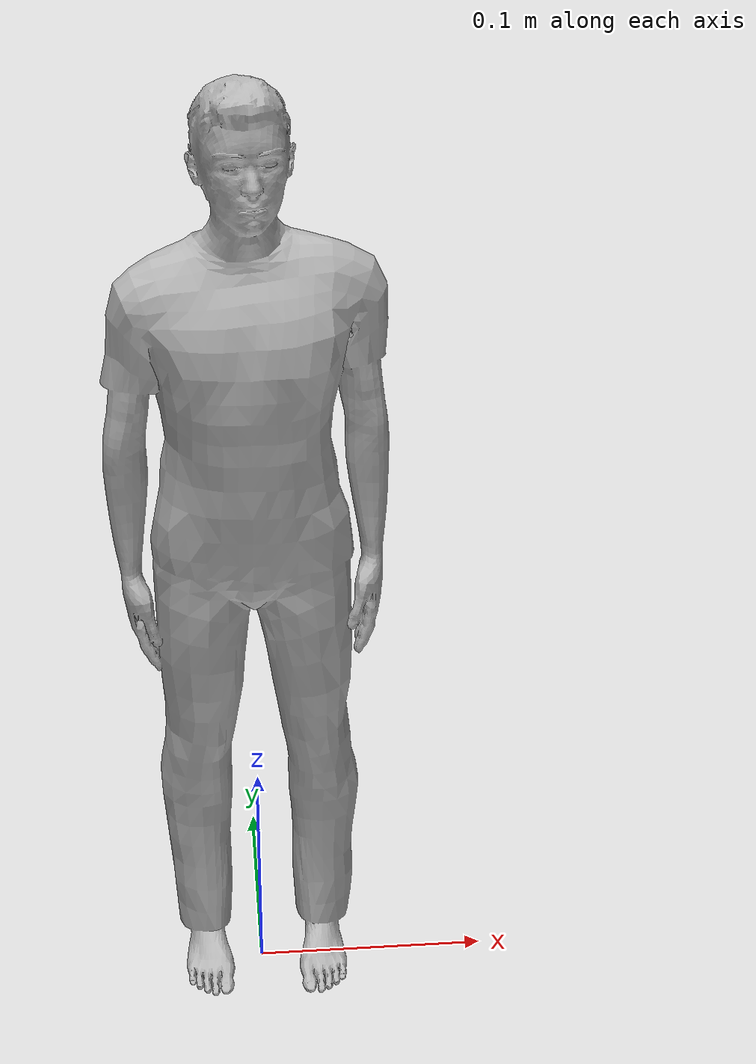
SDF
<?xml version="1.0" ?>
<sdf version="1.6">
  <model name="person_single">
    <static>true</static>
    <link name="p1">
      <pose>0 0 0.02 0 0 0</pose>
      <visual name="v">
        <geometry><mesh><uri>model://person_standing/meshes/standing.dae</uri><scale>0.20 0.20 0.20</scale></mesh></geometry>
      </visual>
      <collision name="c">
        <pose>0 0 0.02 0.04 0 0</pose>
        <geometry><mesh><uri>model://person_standing/meshes/standing.dae</uri><scale>0.20 0.20 0.20</scale></mesh></geometry>
      </collision>
    </link>
  </model>
</sdf>
